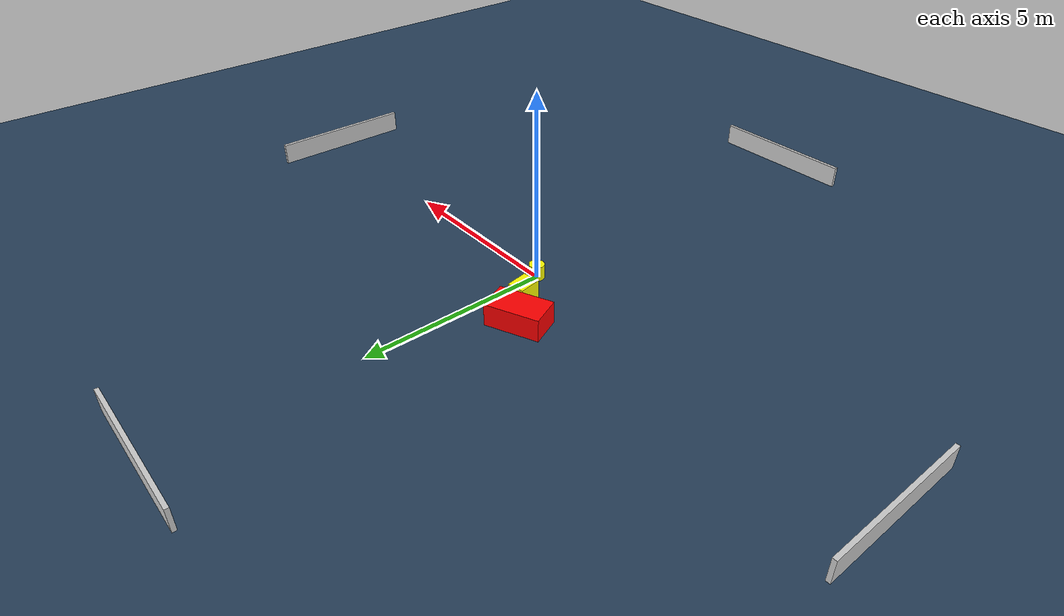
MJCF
<?xml version="1.0" ?>
<mujoco model="generated_environment">
  <option timestep="0.01" integrator="RK4" cone="elliptic"/>
  <default>
    <geom density="1"/>
  </default>
  <asset>
    <texture builtin="gradient" height="3072" name="skybox" rgb1="0.3 0.5 0.7" rgb2="0 0 0" type="skybox" width="512"/>
    <texture builtin="checker" height="300" name="groundplane" rgb1="0.2 0.3 0.4" rgb2="0.1 0.2 0.3" type="2d" width="300"/>
    <material name="groundplane" reflectance="0.2" texrepeat="5 5" texture="groundplane"/>
  </asset>
  <worldbody>
    <light dir="0 0 -1" directional="true" pos="0 0 1.5"/>
    <geom condim="3" friction="0.5 0.005 0.001" material="groundplane" name="floor" pos="0 0 0" size="0 0 0.05" type="plane"/>
    <body name="walls">
      <geom name="wall_1" condim="4" pos="-10.0 0.0 0.3" rgba="0.800000011920929 0.800000011920929 0.800000011920929 1.0" size="0.05 2.0 0.3" type="box"/>
      <geom name="wall_2" condim="4" pos="10.0 0.0 0.3" rgba="0.800000011920929 0.800000011920929 0.800000011920929 1.0" size="0.05 2.0 0.3" type="box"/>
      <geom name="wall_3" condim="4" pos="0.0 -10.0 0.3" rgba="0.800000011920929 0.800000011920929 0.800000011920929 1.0" size="2.0 0.05 0.3" type="box"/>
      <geom name="wall_4" condim="4" pos="0.0 10.0 0.3" rgba="0.800000011920929 0.800000011920929 0.800000011920929 1.0" size="2.0 0.05 0.3" type="box"/>
    </body>
    <body name="robot">
      <joint name="joint_x" type="slide" pos="0 0 0" axis="1 0 0"/>
      <joint name="joint_y" type="slide" pos="0 0 0" axis="0 1 0"/>
      <geom name="robot" type="cylinder" pos="0.0 0.0 0.2" size="0.2 0.2 0.0" mass="5.0" friction="1.0 0.005 0.0001" condim="4" rgba="1.0 1.0 0.0 1.0"/>
    </body>
    <body name="obstacle_1_movable">
      <geom name="obstacle_1_movable" condim="4" pos="-0.6316666203239985 0.9428446733289826 0.3" euler="0 0 9.363624957102697" friction="0.0 0.005 0.001" rgba="1.0 1.0 0.0 1.0" size="0.2269650838789916 0.2961481313895753 0.3" type="box" mass="0.1"/>
      <joint type="free"/>
    </body>
    <body name="obstacle_2_static">
      <geom name="obstacle_2_static" condim="4" pos="-1.2232339595883857 1.5597692847088351 0.3" euler="0 0 113.46771435180808" friction="0.0 0.005 0.001" rgba="1.0 0.0 0.0 1.0" size="0.4126089065515911 0.7150217372807062 0.3" type="box"/>
    </body>
  </worldbody>
  <actuator>
    <motor name="actuator_x" joint="joint_x" gear="1" ctrlrange="-1 1"/>
    <motor name="actuator_y" joint="joint_y" gear="1" ctrlrange="-1 1"/>
  </actuator>
</mujoco>
